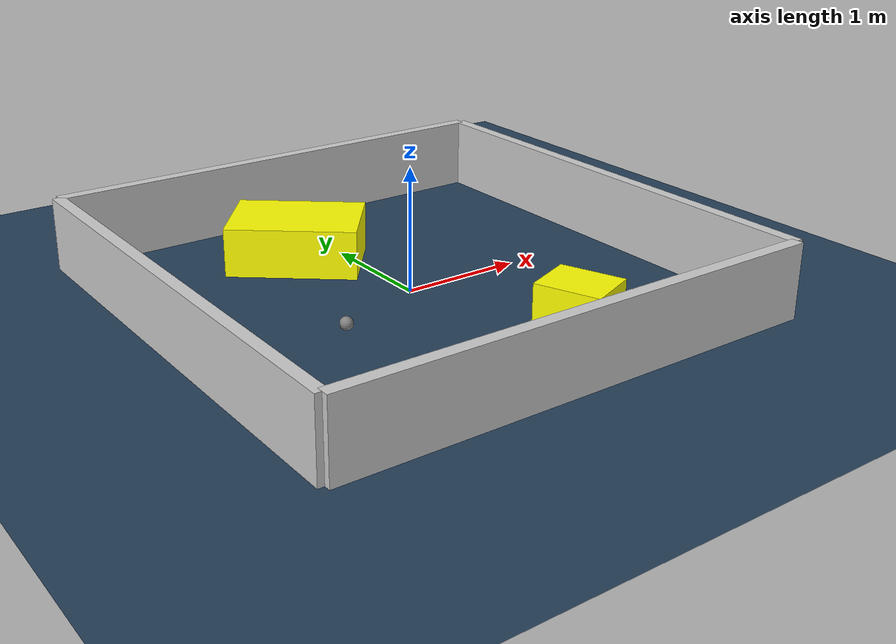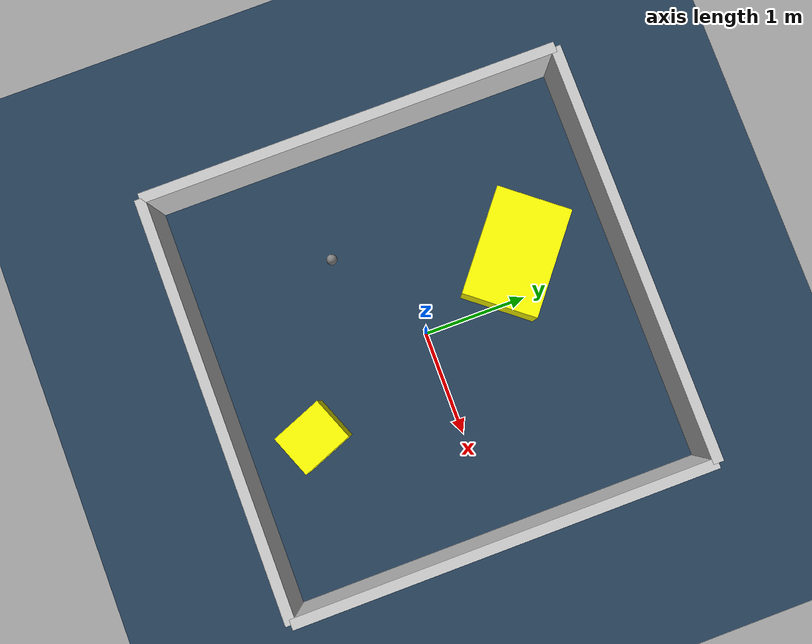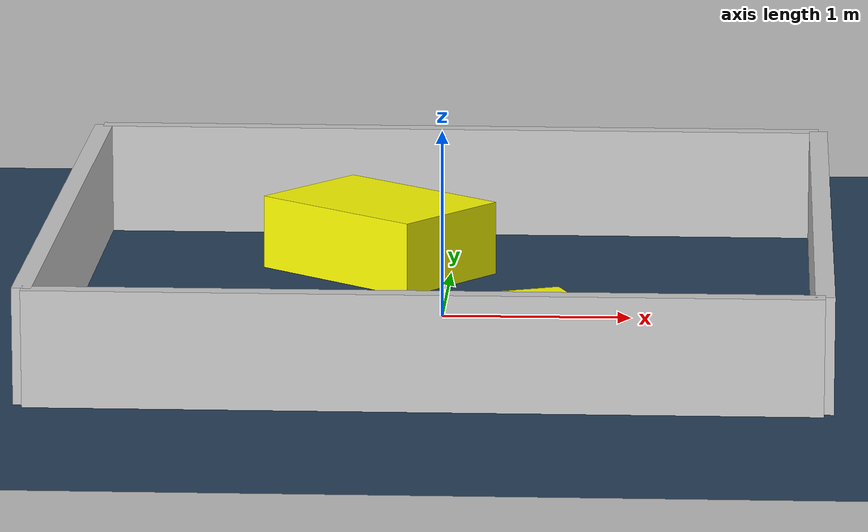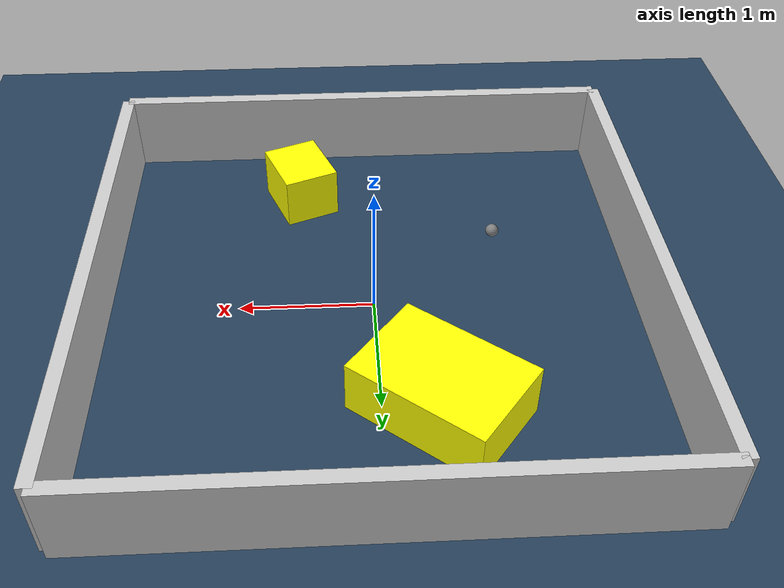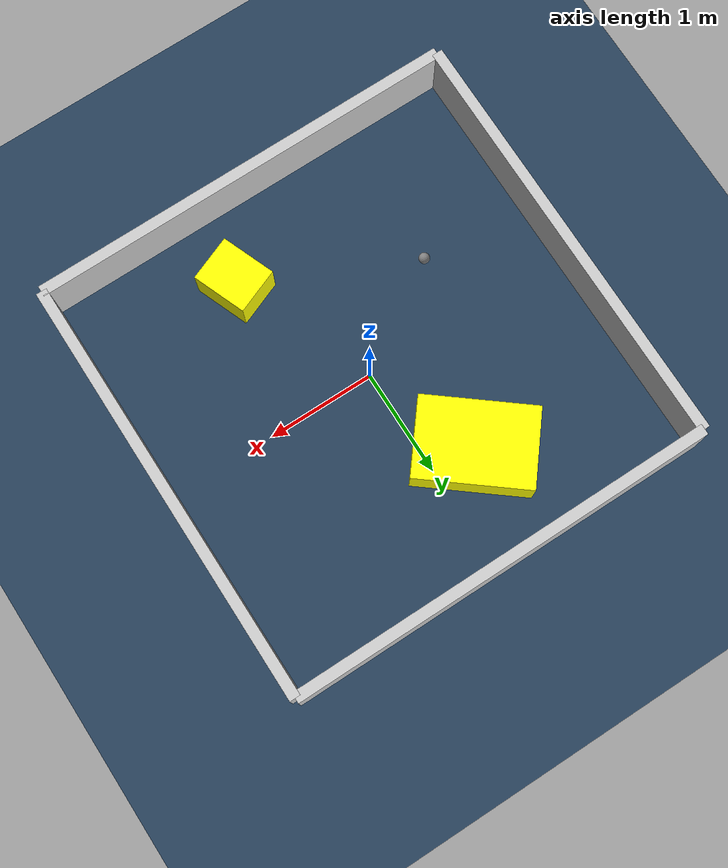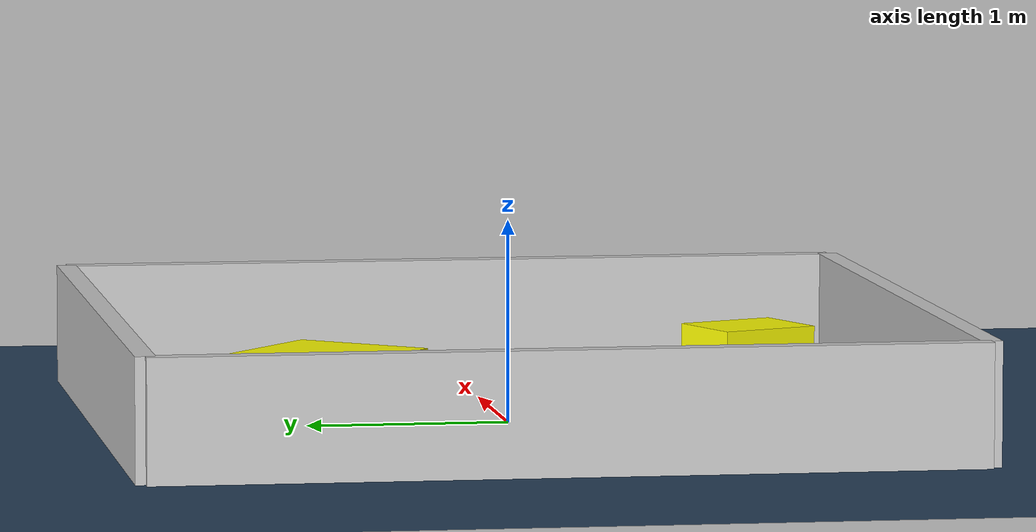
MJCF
<?xml version="1.0" ?>
<mujoco model="generated_environment">
  <option timestep="0.01" integrator="RK4" cone="elliptic"/>
  <default>
    <geom density="1"/>
  </default>
  <asset>
    <texture builtin="gradient" height="3072" rgb1="0.3 0.5 0.7" rgb2="0 0 0" type="skybox" width="512"/>
    <texture builtin="checker" height="300" mark="edge" markrgb="0.8 0.8 0.8" name="groundplane" rgb1="0.2 0.3 0.4" rgb2="0.1 0.2 0.3" type="2d" width="300"/>
    <material name="groundplane" reflectance="0.2" texrepeat="5 5" texture="groundplane" texuniform="true"/>
    <material name="robot" rgba="0.0 1.0 0.0 1"/>
  </asset>
  <worldbody>
    <light dir="0 0 -1" directional="true" pos="0 0 1.5"/>
    <geom condim="4" friction="1.0 0.005 0.001" material="groundplane" name="floor" size="0 0 0.05" type="plane"/>
    <body name="walls">
      <geom name="wall_1" condim="4" pos="-2.0 0.0 0.3" rgba="0.800000011920929 0.800000011920929 0.800000011920929 1.0" size="0.05 2.0 0.3" type="box"/>
      <geom name="wall_2" condim="4" pos="2.0 0.0 0.3" rgba="0.800000011920929 0.800000011920929 0.800000011920929 1.0" size="0.05 2.0 0.3" type="box"/>
      <geom name="wall_3" condim="4" pos="0.0 -2.0 0.3" rgba="0.800000011920929 0.800000011920929 0.800000011920929 1.0" size="2.0 0.05 0.3" type="box"/>
      <geom name="wall_4" condim="4" pos="0.0 2.0 0.3" rgba="0.800000011920929 0.800000011920929 0.800000011920929 1.0" size="2.0 0.05 0.3" type="box"/>
    </body>
    <body name="robot">
      <joint name="joint_x" type="slide" pos="0 0 0" axis="1 0 0"/>
      <joint name="joint_y" type="slide" pos="0 0 0" axis="0 1 0"/>
      <geom name="robot" type="sphere" pos="-0.9509304406048663 -0.5874128665818592 0.2" size="0.05" mass="5." friction="1.0 0.005 0.0001" condim="4"/>
      <site name="sensor_ball"/>
    </body>
    <body name="obstacle_1_movable">
      <geom name="obstacle_1_movable" condim="4" pos="-0.3932914333842572 1.0397870722409133 0.2" euler="0 0 231.3069318960703" friction="1.0 0.005 0.001" rgba="1 1 0 1" size="0.3630002260573047 0.5259191657530833 0.2" type="box" mass="0.1"/>
      <joint type="free"/>
    </body>
    <body name="obstacle_2_movable">
      <geom name="obstacle_2_movable" condim="4" pos="0.5426950720379469 -1.3060403772645703 0.2" euler="0 0 21.610595881381283" friction="1.0 0.005 0.001" rgba="1 1 0 1" size="0.21640904576759296 0.2584642495768691 0.2" type="box" mass="0.1"/>
      <joint type="free"/>
    </body>
  </worldbody>
  <actuator>
    <motor name="actuator_x" joint="joint_x" gear="1" ctrlrange="-1 1"/>
    <motor name="actuator_y" joint="joint_y" gear="1" ctrlrange="-1 1"/>
  </actuator>
</mujoco>
